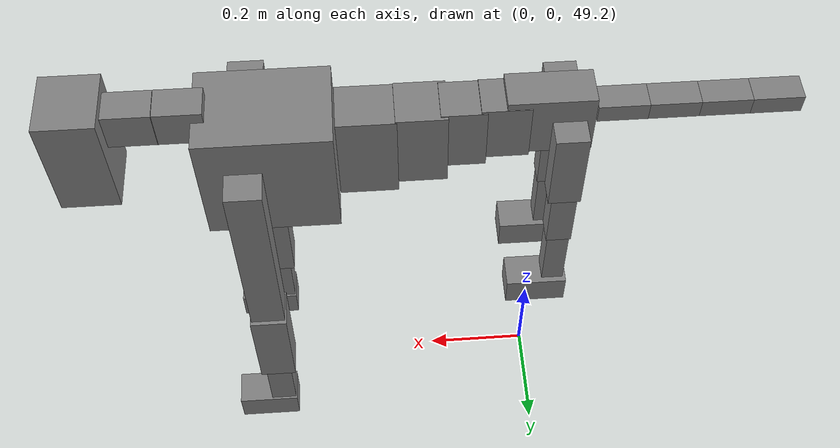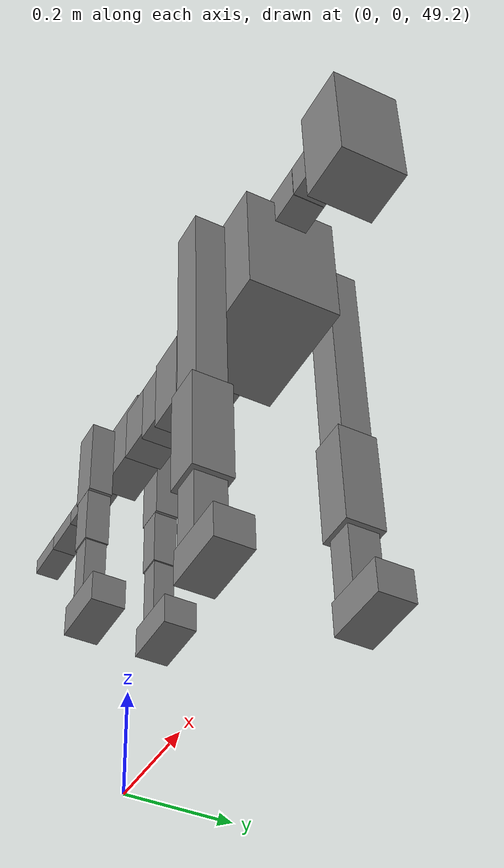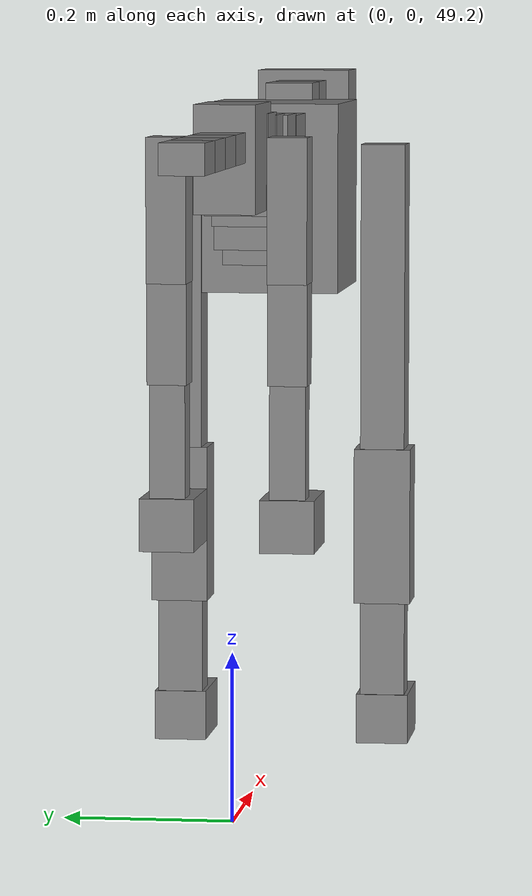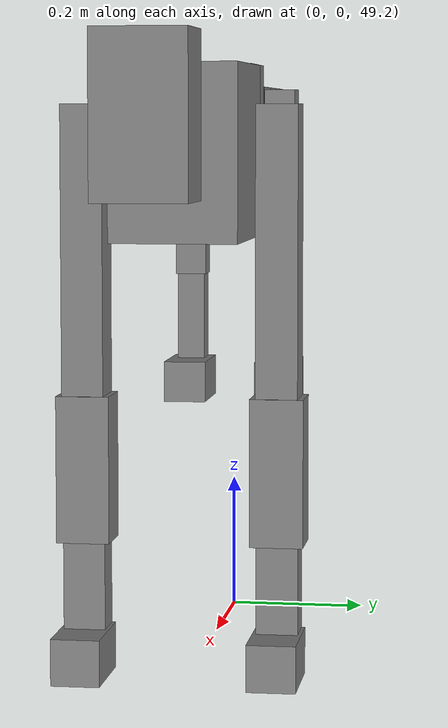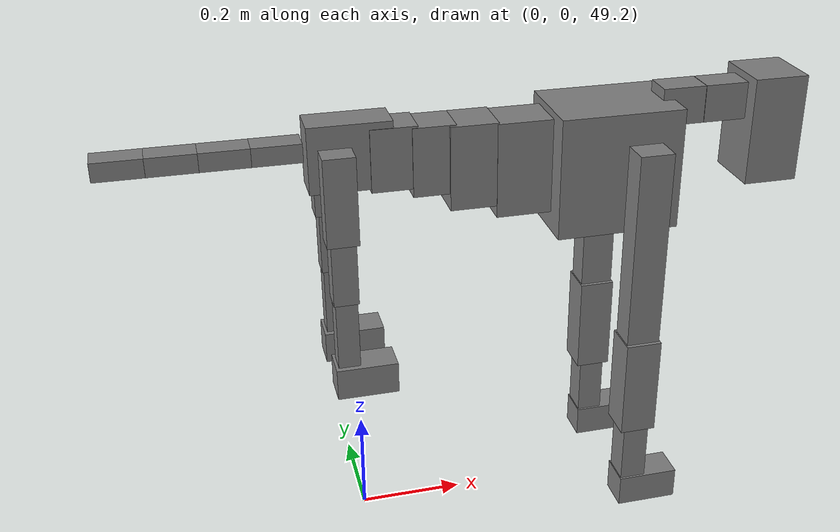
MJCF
<mujoco model="dog">

    <default>
        <joint armature="0.02" stiffness="1" damping="0.2" limited="true"/>
        <geom condim="3" friction="1 0.05 0.05" margin="0.01"/>
        <motor ctrllimited="true" ctrlrange="-1.0 1.0" forcelimited="true" gear="50"/>
    </default>

    <compiler inertiafromgeom="true" angle="radian"/>

    <option timestep="0.016" iterations="50" tolerance="1e-10" solver="Newton" jacobian="dense" cone="pyramidal"/>

    <size nconmax="20000" njmax="60000" nstack="5000000"/>
    <visual>
        <map force="0.1" zfar="30"/>
        <rgba haze="0.15 0.25 0.35 1"/>
        <quality shadowsize="2048"/>
        <global offwidth="800" offheight="800"/>
    </visual>

    <asset>
        <texture type="skybox" builtin="gradient" rgb1="0.3 0.5 0.7" rgb2="0 0 0" width="512" height="512"/>
        <texture name="texplane" type="2d" builtin="checker" rgb1=".2 .3 .4" rgb2=".1 0.15 0.2" width="512" height="512"
                 mark="cross" markrgb=".8 .8 .8"/>
        <texture name="texgeom" type="cube" builtin="flat" mark="cross" width="127" height="1278" rgb1="0.8 0.6 0.4"
                 rgb2="0.8 0.6 0.4" markrgb="1 1 1" random="0.01"/>

        <material name="matplane" reflectance="0.3" texture="texplane" texrepeat="1 1" texuniform="true"/>
        <material name="matgeom" texture="texgeom" texuniform="true" rgba="0.8 0.6 .4 1"/>
    </asset>

    <worldbody>
        <geom name="floor" pos="0 0 0" size="0 0 .25" type="plane" material="matplane" condim="3"/>

        <light directional="false" diffuse=".2 .2 .2" specular="0 0 0" pos="0 0 5" dir="0 0 -1" castshadow="false"/>
        <light mode="targetbodycom" target="torso" directional="false" diffuse=".8 .8 .8" specular="0.3 0.3 0.3"
               pos="0 0 4.0" dir="0 0 -1"/>

        <body name="root" pos="0 0 50">
            <freejoint name="root_1"/>
            <geom type="box" pos="0 0 -0.02" size="0.0774  0.0358  0.063" density="2030"/>

            <body name="spine1" pos="0.054 0 0">
                <joint name="spine1_y" axis="0 1 0" range="0 0.7" limited="true"/>
                <geom type="box" pos="0.02375 0 -0.03" size="0.04375  0.0375  0.05985" density="2030"/>

                <body name="spine2" pos="0.0612 0 0">
                    <joint name="spine2_y" axis="0 1 0" range="-0.15 0.15" limited="true"/>
                    <geom type="box" pos="0.03555  0  -0.04" size="0.04055  0.039  0.06615" density="2030"/>

                    <body name="spine3" pos="0.0730 0 0">
                        <joint name="spine3_y" axis="0 1 0" range="-0.15 0.15" limited="true"/>
                        <geom type="box" pos="0.03555  0  -0.057" size="0.04555  0.0445  0.081" density="2030"/>

                        <body name="spine4" pos="0.0780 0 0">
                            <joint name="spine4_y" axis="0 1 0" range="-0.15 0.15" limited="true"/>
                            <geom type="box" pos="0.05265  0  -0.07" size="0.05265  0.045  0.09135" density="2030"/>

                            <body name="torso" pos="0.1082 0 0">
                                <joint name="torso_y" axis="0 1 0" range="-0.15 0.15" limited="true"/>
                                <geom type="box" pos="0.11925  0  -0.085" size="0.11925  0.085  0.11745"
                                      density="2030"/>

                                <body name="neck1" pos="0.2160  0   0.0180">
                                    <joint name="neck1_y" axis="0 1 0" range="-1.2  -1" limited="true"/>
                                    <geom type="box" pos="0.0423  0  0" size="0.0423  0.03  0.036" density="2325"/>

                                    <body name="neck2" pos="0.0853  0  0">
                                        <joint name="neck2_y" axis="0 1 0" range="0.1  0" limited="true"/>
                                        <geom type="box" pos="0.0423  0  0" size="0.0423  0.03  0.036" density="2325"/>

                                        <body name="head" pos="0.0853  0  0">
                                            <joint name="head_y" axis="0 1 0" range="-0.3  -0.2" limited="true"/>
                                            <geom type="box" pos="0.0531  0  -0.055" size="0.0531  0.06  0.1044"
                                                  density="4030"/>

                                        </body>
                                    </body>
                                </body>

                                <body name="front_shoulder" pos="0.156  0   -0.0480">
                                    <joint name="front_shoulder_y" axis="0 1 0" range="-1 1.5" limited="true"/>
                                    <geom type="box" pos="0 0.13 -0.1805" size="0.0326  0.0279  0.2071" density="1158"/>
                                    <geom type="box" pos="0 -0.13 -0.1805" size="0.0326  0.0279  0.2071"
                                          density="1158"/>

                                    <body name="front_elbow" pos="0  0  -0.3610">
                                        <joint name="front_elbow_y" axis="0 1 0" range="-2 0" limited="true"/>
                                        <geom type="box" pos="0 0.13 -0.0988" size="0.0349  0.0357  0.0988"
                                              density="1081"/>
                                        <geom type="box" pos="0 -0.13 -0.0988" size="0.0349  0.0357  0.0988"
                                              density="1081"/>

                                        <body name="front_wrist" pos="0  0  -0.1977">
                                            <joint name="front_wrist_y" axis="0 1 0" range="-0.2 0" limited="true"/>
                                            <geom type="box" pos="0 0.13 -0.0666" size="0.0254  0.0282  0.0798"
                                                  density="1664"/>
                                            <geom type="box" pos="0 -0.13 -0.0666" size="0.0254  0.0282  0.0798"
                                                  density="1664"/>

                                            <body name="front_finger_end" pos="0  0  -0.1333">
                                                <joint name="front_finger_y" axis="0 1 0" range="-0.4 1"
                                                       limited="true"/>
                                                <geom type="box" pos="0.0328  0.13  -0.0164"
                                                      size="0.0601  0.0328  0.0314" density="1515"/>
                                                <geom type="box" pos="0.0328  -0.13  -0.0164"
                                                      size="0.0601  0.0328  0.0314" density="1515"/>

                                            </body>

                                        </body>
                                    </body>
                                </body>

                            </body>
                        </body>
                    </body>
                </body>
            </body>

            <body name="back_hip" pos="-0.03 0 -0.018">
                <joint name="back_hip_y" axis="0 1 0" range="-1.5 0.3" limited="true"/>
                <geom type="box" pos="0 0.07 -0.0616" size="0.0296  0.0232  0.0844" density="1154"/>
                <geom type="box" pos="0 -0.07 -0.0616" size="0.0296  0.0232  0.0844" density="1154"/>

                <body name="back_knee" pos="0  0  -0.1232">
                    <joint name="back_knee_y" axis="0 1 0" range="0 2.8" limited="true"/>
                    <geom type="box" pos="0 0.07 -0.0623" size="0.0235  0.0231  0.0779" density="1227"/>
                    <geom type="box" pos="0 -0.07 -0.0623" size="0.0235  0.0231  0.0779" density="1227"/>

                    <body name="back_ankle" pos="0  0  -0.1246">
                        <joint name="back_ankle_y" axis="0 1 0" range="-2.2 0" limited="true"/>
                        <geom type="box" pos="0 0.07 -0.0814" size="0.0208  0.0208  0.0926" density="1284"/>
                        <geom type="box" pos="0 -0.07 -0.0814" size="0.0208  0.0208  0.0926" density="1284"/>

                        <body name="back_toe_end" pos="0  0  -0.1627">
                            <joint name="back_toe_y" axis="0 1 0" range="-0.4 1" limited="true"/>
                            <geom type="box" pos="0.0319  0.07  -0.0158" size="0.0584  0.0319  0.0308" density="1515"/>
                            <geom type="box" pos="0.0319  -0.07  -0.0158" size="0.0584  0.0319  0.0308" density="1515"/>

                        </body>
                    </body>
                </body>
            </body>

            <body name="tail1" pos="-0.074 0 -0.006">
                <joint name="tail1_y" axis="0 1 0" range="-0.2 0.2" limited="true"/>
                <geom type="box" pos="-0.0536  0  0" size="0.045  0.025  0.0175" density="1587"/>

                <body name="tail2" pos="-0.09 0 0">
                    <joint name="tail2_y" axis="0 1 0" range="-0.2 0.2" limited="true"/>
                    <geom type="box" pos="-0.0536  0  0" size="0.045  0.025  0.0175" density="1587"/>

                    <body name="tail3" pos="-0.09 0 0">
                        <joint name="tail3_y" axis="0 1 0" range="-0.2 0.2" limited="true"/>
                        <geom type="box" pos="-0.0536  0  0" size="0.045  0.025  0.0175" density="1587"/>

                        <body name="tail4" pos="-0.09 0 0">
                            <joint name="tail4_y" axis="0 1 0" range="-0.2 0.2" limited="true"/>
                            <geom type="box" pos="-0.0536  0  0" size="0.045  0.025  0.0175" density="1587"/>

                        </body>
                    </body>
                </body>
            </body>
        </body>
    </worldbody>

    <actuator>
        <motor joint="spine1_y" forcerange="-150 150     "/>
        <motor joint="spine2_y" forcerange="-150 150     "/>
        <motor joint="spine3_y" forcerange="-150 150     "/>
        <motor joint="spine4_y" forcerange="-150 150     "/>
        <motor joint="torso_y" forcerange="-150 150     "/>
        <motor joint="neck1_y" forcerange="-100 100       "/>
        <motor joint="neck2_y" forcerange="-100 100       "/>
        <motor joint="head_y" forcerange="-150 150       "/>
        <motor joint="front_shoulder_y" forcerange="-134.02 151.79"/>
        <motor joint="front_elbow_y" forcerange="-166.41 192.95"/>
        <motor joint="front_wrist_y" forcerange="-104.63 120.95"/>
        <motor joint="front_finger_y" forcerange="-97.53 37.20"/>
        <motor joint="back_hip_y" forcerange="-298.67 211.14"/>
        <motor joint="back_knee_y" forcerange="-331.46 204.86"/>
        <motor joint="back_angle_y" forcerange="-119.71 113.68"/>
        <motor joint="back_toe_y" forcerange="-87.16 87.76"/>
        <motor joint="tail1_y" forcerange="-50 50     "/>
        <motor joint="tail2_y" forcerange="-50 50     "/>
        <motor joint="tail3_y" forcerange="-50 50     "/>
        <motor joint="tail4_y" forcerange="-50 50     "/>
    </actuator>
</mujoco>
